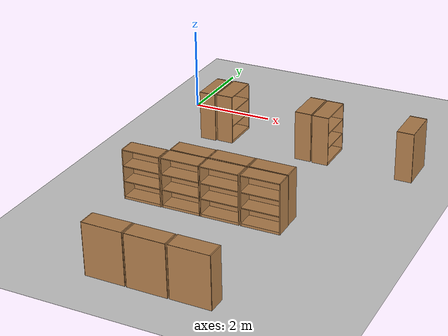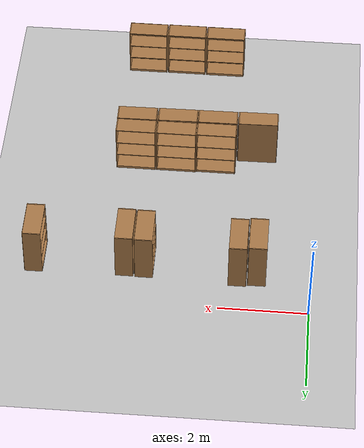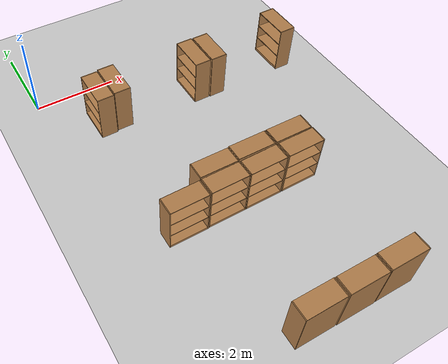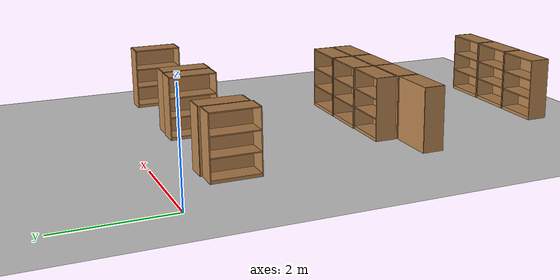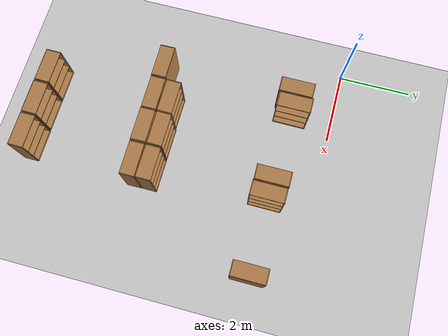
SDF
<sdf version="1.6">
 <world name="default">
  <model name="ground_plane">
   <static>1</static>
   <link name="link">
    <collision name="collision">
     <geometry><plane><normal>0 0 1</normal><size>100 100</size></plane></geometry>
     <surface>
      <contact><collide_bitmask>65535</collide_bitmask></contact>
      <friction><ode><mu>100</mu><mu2>50</mu2></ode></friction>
     </surface>
    </collision>
    <visual name="visual">
     <cast_shadows>0</cast_shadows>
     <geometry><plane><normal>0 0 1</normal><size>100 100</size></plane></geometry>
     <material>
      <script><uri>file://media/materials/scripts/gazebo.material</uri><name>Gazebo/Grey</name></script>
     </material>
    </visual>
   </link>
  </model>
  <model name="bookshelf_clone_38">
   <static>1</static>
   <link name="link">
    <inertial><mass>1</mass></inertial>
    <collision name="back">
     <pose>0 0.005 0.6 0 -0 0</pose>
     <geometry><box><size>0.9 0.01 1.2</size></box></geometry>
    </collision>
    <visual name="visual1">
     <pose>0 0.005 0.6 0 -0 0</pose>
     <geometry><box><size>0.9 0.01 1.2</size></box></geometry>
     <material>
      <script><uri>file://media/materials/scripts/gazebo.material</uri><name>Gazebo/Wood</name></script>
     </material>
    </visual>
    <collision name="left_side">
     <pose>0.45 -0.195 0.6 0 -0 0</pose>
     <geometry><box><size>0.02 0.4 1.2</size></box></geometry>
    </collision>
    <visual name="visual2">
     <pose>0.45 -0.195 0.6 0 -0 0</pose>
     <geometry><box><size>0.02 0.4 1.2</size></box></geometry>
     <material>
      <script><uri>file://media/materials/scripts/gazebo.material</uri><name>Gazebo/Wood</name></script>
     </material>
    </visual>
    <collision name="right_side">
     <pose>-0.45 -0.195 0.6 0 -0 0</pose>
     <geometry><box><size>0.02 0.4 1.2</size></box></geometry>
    </collision>
    <visual name="visual3">
     <pose>-0.45 -0.195 0.6 0 -0 0</pose>
     <geometry><box><size>0.02 0.4 1.2</size></box></geometry>
     <material>
      <script><uri>file://media/materials/scripts/gazebo.material</uri><name>Gazebo/Wood</name></script>
     </material>
    </visual>
    <collision name="bottom">
     <pose>0 -0.195 0.03 0 -0 0</pose>
     <geometry><box><size>0.88 0.4 0.06</size></box></geometry>
    </collision>
    <visual name="visual4">
     <pose>0 -0.195 0.03 0 -0 0</pose>
     <geometry><box><size>0.88 0.4 0.06</size></box></geometry>
     <material>
      <script><uri>file://media/materials/scripts/gazebo.material</uri><name>Gazebo/Wood</name></script>
     </material>
    </visual>
    <collision name="top">
     <pose>0 -0.195 1.19 0 -0 0</pose>
     <geometry><box><size>0.88 0.4 0.02</size></box></geometry>
    </collision>
    <visual name="visual5">
     <pose>0 -0.195 1.19 0 -0 0</pose>
     <geometry><box><size>0.88 0.4 0.02</size></box></geometry>
     <material>
      <script><uri>file://media/materials/scripts/gazebo.material</uri><name>Gazebo/Wood</name></script>
     </material>
    </visual>
    <collision name="low_shelf">
     <pose>0 -0.195 0.43 0 -0 0</pose>
     <geometry><box><size>0.88 0.4 0.02</size></box></geometry>
    </collision>
    <visual name="visual6">
     <pose>0 -0.195 0.43 0 -0 0</pose>
     <geometry><box><size>0.88 0.4 0.02</size></box></geometry>
     <material>
      <script><uri>file://media/materials/scripts/gazebo.material</uri><name>Gazebo/Wood</name></script>
     </material>
    </visual>
    <collision name="high_shelf">
     <pose>0 -0.195 0.8 0 -0 0</pose>
     <geometry><box><size>0.88 0.4 0.02</size></box></geometry>
    </collision>
    <visual name="visual7">
     <pose>0 -0.195 0.8 0 -0 0</pose>
     <geometry><box><size>0.88 0.4 0.02</size></box></geometry>
     <material>
      <script><uri>file://media/materials/scripts/gazebo.material</uri><name>Gazebo/Wood</name></script>
     </material>
    </visual>
   </link>
   <pose>4.17204 -4.61435 0 0 -0 0.005938</pose>
  </model>
  <model name="bookshelf_clone_39">
   <static>1</static>
   <link name="link">
    <inertial><mass>1</mass></inertial>
    <collision name="back">
     <pose>0 0.005 0.6 0 -0 0</pose>
     <geometry><box><size>0.9 0.01 1.2</size></box></geometry>
    </collision>
    <visual name="visual1">
     <pose>0 0.005 0.6 0 -0 0</pose>
     <geometry><box><size>0.9 0.01 1.2</size></box></geometry>
     <material>
      <script><uri>file://media/materials/scripts/gazebo.material</uri><name>Gazebo/Wood</name></script>
     </material>
    </visual>
    <collision name="left_side">
     <pose>0.45 -0.195 0.6 0 -0 0</pose>
     <geometry><box><size>0.02 0.4 1.2</size></box></geometry>
    </collision>
    <visual name="visual2">
     <pose>0.45 -0.195 0.6 0 -0 0</pose>
     <geometry><box><size>0.02 0.4 1.2</size></box></geometry>
     <material>
      <script><uri>file://media/materials/scripts/gazebo.material</uri><name>Gazebo/Wood</name></script>
     </material>
    </visual>
    <collision name="right_side">
     <pose>-0.45 -0.195 0.6 0 -0 0</pose>
     <geometry><box><size>0.02 0.4 1.2</size></box></geometry>
    </collision>
    <visual name="visual3">
     <pose>-0.45 -0.195 0.6 0 -0 0</pose>
     <geometry><box><size>0.02 0.4 1.2</size></box></geometry>
     <material>
      <script><uri>file://media/materials/scripts/gazebo.material</uri><name>Gazebo/Wood</name></script>
     </material>
    </visual>
    <collision name="bottom">
     <pose>0 -0.195 0.03 0 -0 0</pose>
     <geometry><box><size>0.88 0.4 0.06</size></box></geometry>
    </collision>
    <visual name="visual4">
     <pose>0 -0.195 0.03 0 -0 0</pose>
     <geometry><box><size>0.88 0.4 0.06</size></box></geometry>
     <material>
      <script><uri>file://media/materials/scripts/gazebo.material</uri><name>Gazebo/Wood</name></script>
     </material>
    </visual>
    <collision name="top">
     <pose>0 -0.195 1.19 0 -0 0</pose>
     <geometry><box><size>0.88 0.4 0.02</size></box></geometry>
    </collision>
    <visual name="visual5">
     <pose>0 -0.195 1.19 0 -0 0</pose>
     <geometry><box><size>0.88 0.4 0.02</size></box></geometry>
     <material>
      <script><uri>file://media/materials/scripts/gazebo.material</uri><name>Gazebo/Wood</name></script>
     </material>
    </visual>
    <collision name="low_shelf">
     <pose>0 -0.195 0.43 0 -0 0</pose>
     <geometry><box><size>0.88 0.4 0.02</size></box></geometry>
    </collision>
    <visual name="visual6">
     <pose>0 -0.195 0.43 0 -0 0</pose>
     <geometry><box><size>0.88 0.4 0.02</size></box></geometry>
     <material>
      <script><uri>file://media/materials/scripts/gazebo.material</uri><name>Gazebo/Wood</name></script>
     </material>
    </visual>
    <collision name="high_shelf">
     <pose>0 -0.195 0.8 0 -0 0</pose>
     <geometry><box><size>0.88 0.4 0.02</size></box></geometry>
    </collision>
    <visual name="visual7">
     <pose>0 -0.195 0.8 0 -0 0</pose>
     <geometry><box><size>0.88 0.4 0.02</size></box></geometry>
     <material>
      <script><uri>file://media/materials/scripts/gazebo.material</uri><name>Gazebo/Wood</name></script>
     </material>
    </visual>
   </link>
   <pose>3.22638 -4.62218 0 0 -0 0.005938</pose>
  </model>
  <model name="bookshelf_clone_40">
   <static>1</static>
   <link name="link">
    <inertial><mass>1</mass></inertial>
    <collision name="back">
     <pose>0 0.005 0.6 0 -0 0</pose>
     <geometry><box><size>0.9 0.01 1.2</size></box></geometry>
    </collision>
    <visual name="visual1">
     <pose>0 0.005 0.6 0 -0 0</pose>
     <geometry><box><size>0.9 0.01 1.2</size></box></geometry>
     <material>
      <script><uri>file://media/materials/scripts/gazebo.material</uri><name>Gazebo/Wood</name></script>
     </material>
    </visual>
    <collision name="left_side">
     <pose>0.45 -0.195 0.6 0 -0 0</pose>
     <geometry><box><size>0.02 0.4 1.2</size></box></geometry>
    </collision>
    <visual name="visual2">
     <pose>0.45 -0.195 0.6 0 -0 0</pose>
     <geometry><box><size>0.02 0.4 1.2</size></box></geometry>
     <material>
      <script><uri>file://media/materials/scripts/gazebo.material</uri><name>Gazebo/Wood</name></script>
     </material>
    </visual>
    <collision name="right_side">
     <pose>-0.45 -0.195 0.6 0 -0 0</pose>
     <geometry><box><size>0.02 0.4 1.2</size></box></geometry>
    </collision>
    <visual name="visual3">
     <pose>-0.45 -0.195 0.6 0 -0 0</pose>
     <geometry><box><size>0.02 0.4 1.2</size></box></geometry>
     <material>
      <script><uri>file://media/materials/scripts/gazebo.material</uri><name>Gazebo/Wood</name></script>
     </material>
    </visual>
    <collision name="bottom">
     <pose>0 -0.195 0.03 0 -0 0</pose>
     <geometry><box><size>0.88 0.4 0.06</size></box></geometry>
    </collision>
    <visual name="visual4">
     <pose>0 -0.195 0.03 0 -0 0</pose>
     <geometry><box><size>0.88 0.4 0.06</size></box></geometry>
     <material>
      <script><uri>file://media/materials/scripts/gazebo.material</uri><name>Gazebo/Wood</name></script>
     </material>
    </visual>
    <collision name="top">
     <pose>0 -0.195 1.19 0 -0 0</pose>
     <geometry><box><size>0.88 0.4 0.02</size></box></geometry>
    </collision>
    <visual name="visual5">
     <pose>0 -0.195 1.19 0 -0 0</pose>
     <geometry><box><size>0.88 0.4 0.02</size></box></geometry>
     <material>
      <script><uri>file://media/materials/scripts/gazebo.material</uri><name>Gazebo/Wood</name></script>
     </material>
    </visual>
    <collision name="low_shelf">
     <pose>0 -0.195 0.43 0 -0 0</pose>
     <geometry><box><size>0.88 0.4 0.02</size></box></geometry>
    </collision>
    <visual name="visual6">
     <pose>0 -0.195 0.43 0 -0 0</pose>
     <geometry><box><size>0.88 0.4 0.02</size></box></geometry>
     <material>
      <script><uri>file://media/materials/scripts/gazebo.material</uri><name>Gazebo/Wood</name></script>
     </material>
    </visual>
    <collision name="high_shelf">
     <pose>0 -0.195 0.8 0 -0 0</pose>
     <geometry><box><size>0.88 0.4 0.02</size></box></geometry>
    </collision>
    <visual name="visual7">
     <pose>0 -0.195 0.8 0 -0 0</pose>
     <geometry><box><size>0.88 0.4 0.02</size></box></geometry>
     <material>
      <script><uri>file://media/materials/scripts/gazebo.material</uri><name>Gazebo/Wood</name></script>
     </material>
    </visual>
   </link>
   <pose>2.29794 -4.62569 0 0 -0 0.005938</pose>
  </model>
  <model name="bookshelf_clone_41">
   <static>1</static>
   <link name="link">
    <inertial><mass>1</mass></inertial>
    <collision name="back">
     <pose>0 0.005 0.6 0 -0 0</pose>
     <geometry><box><size>0.9 0.01 1.2</size></box></geometry>
    </collision>
    <visual name="visual1">
     <pose>0 0.005 0.6 0 -0 0</pose>
     <geometry><box><size>0.9 0.01 1.2</size></box></geometry>
     <material>
      <script><uri>file://media/materials/scripts/gazebo.material</uri><name>Gazebo/Wood</name></script>
     </material>
    </visual>
    <collision name="left_side">
     <pose>0.45 -0.195 0.6 0 -0 0</pose>
     <geometry><box><size>0.02 0.4 1.2</size></box></geometry>
    </collision>
    <visual name="visual2">
     <pose>0.45 -0.195 0.6 0 -0 0</pose>
     <geometry><box><size>0.02 0.4 1.2</size></box></geometry>
     <material>
      <script><uri>file://media/materials/scripts/gazebo.material</uri><name>Gazebo/Wood</name></script>
     </material>
    </visual>
    <collision name="right_side">
     <pose>-0.45 -0.195 0.6 0 -0 0</pose>
     <geometry><box><size>0.02 0.4 1.2</size></box></geometry>
    </collision>
    <visual name="visual3">
     <pose>-0.45 -0.195 0.6 0 -0 0</pose>
     <geometry><box><size>0.02 0.4 1.2</size></box></geometry>
     <material>
      <script><uri>file://media/materials/scripts/gazebo.material</uri><name>Gazebo/Wood</name></script>
     </material>
    </visual>
    <collision name="bottom">
     <pose>0 -0.195 0.03 0 -0 0</pose>
     <geometry><box><size>0.88 0.4 0.06</size></box></geometry>
    </collision>
    <visual name="visual4">
     <pose>0 -0.195 0.03 0 -0 0</pose>
     <geometry><box><size>0.88 0.4 0.06</size></box></geometry>
     <material>
      <script><uri>file://media/materials/scripts/gazebo.material</uri><name>Gazebo/Wood</name></script>
     </material>
    </visual>
    <collision name="top">
     <pose>0 -0.195 1.19 0 -0 0</pose>
     <geometry><box><size>0.88 0.4 0.02</size></box></geometry>
    </collision>
    <visual name="visual5">
     <pose>0 -0.195 1.19 0 -0 0</pose>
     <geometry><box><size>0.88 0.4 0.02</size></box></geometry>
     <material>
      <script><uri>file://media/materials/scripts/gazebo.material</uri><name>Gazebo/Wood</name></script>
     </material>
    </visual>
    <collision name="low_shelf">
     <pose>0 -0.195 0.43 0 -0 0</pose>
     <geometry><box><size>0.88 0.4 0.02</size></box></geometry>
    </collision>
    <visual name="visual6">
     <pose>0 -0.195 0.43 0 -0 0</pose>
     <geometry><box><size>0.88 0.4 0.02</size></box></geometry>
     <material>
      <script><uri>file://media/materials/scripts/gazebo.material</uri><name>Gazebo/Wood</name></script>
     </material>
    </visual>
    <collision name="high_shelf">
     <pose>0 -0.195 0.8 0 -0 0</pose>
     <geometry><box><size>0.88 0.4 0.02</size></box></geometry>
    </collision>
    <visual name="visual7">
     <pose>0 -0.195 0.8 0 -0 0</pose>
     <geometry><box><size>0.88 0.4 0.02</size></box></geometry>
     <material>
      <script><uri>file://media/materials/scripts/gazebo.material</uri><name>Gazebo/Wood</name></script>
     </material>
    </visual>
   </link>
   <pose>1.35736 -4.64041 0 0 -0 0.005938</pose>
  </model>
  <model name="bookshelf_clone_44">
   <static>1</static>
   <link name="link">
    <inertial><mass>1</mass></inertial>
    <collision name="back">
     <pose>0 0.005 0.6 0 -0 0</pose>
     <geometry><box><size>0.9 0.01 1.2</size></box></geometry>
    </collision>
    <visual name="visual1">
     <pose>0 0.005 0.6 0 -0 0</pose>
     <geometry><box><size>0.9 0.01 1.2</size></box></geometry>
     <material>
      <script><uri>file://media/materials/scripts/gazebo.material</uri><name>Gazebo/Wood</name></script>
     </material>
    </visual>
    <collision name="left_side">
     <pose>0.45 -0.195 0.6 0 -0 0</pose>
     <geometry><box><size>0.02 0.4 1.2</size></box></geometry>
    </collision>
    <visual name="visual2">
     <pose>0.45 -0.195 0.6 0 -0 0</pose>
     <geometry><box><size>0.02 0.4 1.2</size></box></geometry>
     <material>
      <script><uri>file://media/materials/scripts/gazebo.material</uri><name>Gazebo/Wood</name></script>
     </material>
    </visual>
    <collision name="right_side">
     <pose>-0.45 -0.195 0.6 0 -0 0</pose>
     <geometry><box><size>0.02 0.4 1.2</size></box></geometry>
    </collision>
    <visual name="visual3">
     <pose>-0.45 -0.195 0.6 0 -0 0</pose>
     <geometry><box><size>0.02 0.4 1.2</size></box></geometry>
     <material>
      <script><uri>file://media/materials/scripts/gazebo.material</uri><name>Gazebo/Wood</name></script>
     </material>
    </visual>
    <collision name="bottom">
     <pose>0 -0.195 0.03 0 -0 0</pose>
     <geometry><box><size>0.88 0.4 0.06</size></box></geometry>
    </collision>
    <visual name="visual4">
     <pose>0 -0.195 0.03 0 -0 0</pose>
     <geometry><box><size>0.88 0.4 0.06</size></box></geometry>
     <material>
      <script><uri>file://media/materials/scripts/gazebo.material</uri><name>Gazebo/Wood</name></script>
     </material>
    </visual>
    <collision name="top">
     <pose>0 -0.195 1.19 0 -0 0</pose>
     <geometry><box><size>0.88 0.4 0.02</size></box></geometry>
    </collision>
    <visual name="visual5">
     <pose>0 -0.195 1.19 0 -0 0</pose>
     <geometry><box><size>0.88 0.4 0.02</size></box></geometry>
     <material>
      <script><uri>file://media/materials/scripts/gazebo.material</uri><name>Gazebo/Wood</name></script>
     </material>
    </visual>
    <collision name="low_shelf">
     <pose>0 -0.195 0.43 0 -0 0</pose>
     <geometry><box><size>0.88 0.4 0.02</size></box></geometry>
    </collision>
    <visual name="visual6">
     <pose>0 -0.195 0.43 0 -0 0</pose>
     <geometry><box><size>0.88 0.4 0.02</size></box></geometry>
     <material>
      <script><uri>file://media/materials/scripts/gazebo.material</uri><name>Gazebo/Wood</name></script>
     </material>
    </visual>
    <collision name="high_shelf">
     <pose>0 -0.195 0.8 0 -0 0</pose>
     <geometry><box><size>0.88 0.4 0.02</size></box></geometry>
    </collision>
    <visual name="visual7">
     <pose>0 -0.195 0.8 0 -0 0</pose>
     <geometry><box><size>0.88 0.4 0.02</size></box></geometry>
     <material>
      <script><uri>file://media/materials/scripts/gazebo.material</uri><name>Gazebo/Wood</name></script>
     </material>
    </visual>
   </link>
   <pose>4.16633 -4.5747 0 0 -0 3.13561</pose>
  </model>
  <model name="bookshelf_clone_45">
   <static>1</static>
   <link name="link">
    <inertial><mass>1</mass></inertial>
    <collision name="back">
     <pose>0 0.005 0.6 0 -0 0</pose>
     <geometry><box><size>0.9 0.01 1.2</size></box></geometry>
    </collision>
    <visual name="visual1">
     <pose>0 0.005 0.6 0 -0 0</pose>
     <geometry><box><size>0.9 0.01 1.2</size></box></geometry>
     <material>
      <script><uri>file://media/materials/scripts/gazebo.material</uri><name>Gazebo/Wood</name></script>
     </material>
    </visual>
    <collision name="left_side">
     <pose>0.45 -0.195 0.6 0 -0 0</pose>
     <geometry><box><size>0.02 0.4 1.2</size></box></geometry>
    </collision>
    <visual name="visual2">
     <pose>0.45 -0.195 0.6 0 -0 0</pose>
     <geometry><box><size>0.02 0.4 1.2</size></box></geometry>
     <material>
      <script><uri>file://media/materials/scripts/gazebo.material</uri><name>Gazebo/Wood</name></script>
     </material>
    </visual>
    <collision name="right_side">
     <pose>-0.45 -0.195 0.6 0 -0 0</pose>
     <geometry><box><size>0.02 0.4 1.2</size></box></geometry>
    </collision>
    <visual name="visual3">
     <pose>-0.45 -0.195 0.6 0 -0 0</pose>
     <geometry><box><size>0.02 0.4 1.2</size></box></geometry>
     <material>
      <script><uri>file://media/materials/scripts/gazebo.material</uri><name>Gazebo/Wood</name></script>
     </material>
    </visual>
    <collision name="bottom">
     <pose>0 -0.195 0.03 0 -0 0</pose>
     <geometry><box><size>0.88 0.4 0.06</size></box></geometry>
    </collision>
    <visual name="visual4">
     <pose>0 -0.195 0.03 0 -0 0</pose>
     <geometry><box><size>0.88 0.4 0.06</size></box></geometry>
     <material>
      <script><uri>file://media/materials/scripts/gazebo.material</uri><name>Gazebo/Wood</name></script>
     </material>
    </visual>
    <collision name="top">
     <pose>0 -0.195 1.19 0 -0 0</pose>
     <geometry><box><size>0.88 0.4 0.02</size></box></geometry>
    </collision>
    <visual name="visual5">
     <pose>0 -0.195 1.19 0 -0 0</pose>
     <geometry><box><size>0.88 0.4 0.02</size></box></geometry>
     <material>
      <script><uri>file://media/materials/scripts/gazebo.material</uri><name>Gazebo/Wood</name></script>
     </material>
    </visual>
    <collision name="low_shelf">
     <pose>0 -0.195 0.43 0 -0 0</pose>
     <geometry><box><size>0.88 0.4 0.02</size></box></geometry>
    </collision>
    <visual name="visual6">
     <pose>0 -0.195 0.43 0 -0 0</pose>
     <geometry><box><size>0.88 0.4 0.02</size></box></geometry>
     <material>
      <script><uri>file://media/materials/scripts/gazebo.material</uri><name>Gazebo/Wood</name></script>
     </material>
    </visual>
    <collision name="high_shelf">
     <pose>0 -0.195 0.8 0 -0 0</pose>
     <geometry><box><size>0.88 0.4 0.02</size></box></geometry>
    </collision>
    <visual name="visual7">
     <pose>0 -0.195 0.8 0 -0 0</pose>
     <geometry><box><size>0.88 0.4 0.02</size></box></geometry>
     <material>
      <script><uri>file://media/materials/scripts/gazebo.material</uri><name>Gazebo/Wood</name></script>
     </material>
    </visual>
   </link>
   <pose>3.22636 -4.57112 0 0 -0 3.13561</pose>
  </model>
  <model name="bookshelf_clone_46">
   <static>1</static>
   <link name="link">
    <inertial><mass>1</mass></inertial>
    <collision name="back">
     <pose>0 0.005 0.6 0 -0 0</pose>
     <geometry><box><size>0.9 0.01 1.2</size></box></geometry>
    </collision>
    <visual name="visual1">
     <pose>0 0.005 0.6 0 -0 0</pose>
     <geometry><box><size>0.9 0.01 1.2</size></box></geometry>
     <material>
      <script><uri>file://media/materials/scripts/gazebo.material</uri><name>Gazebo/Wood</name></script>
     </material>
    </visual>
    <collision name="left_side">
     <pose>0.45 -0.195 0.6 0 -0 0</pose>
     <geometry><box><size>0.02 0.4 1.2</size></box></geometry>
    </collision>
    <visual name="visual2">
     <pose>0.45 -0.195 0.6 0 -0 0</pose>
     <geometry><box><size>0.02 0.4 1.2</size></box></geometry>
     <material>
      <script><uri>file://media/materials/scripts/gazebo.material</uri><name>Gazebo/Wood</name></script>
     </material>
    </visual>
    <collision name="right_side">
     <pose>-0.45 -0.195 0.6 0 -0 0</pose>
     <geometry><box><size>0.02 0.4 1.2</size></box></geometry>
    </collision>
    <visual name="visual3">
     <pose>-0.45 -0.195 0.6 0 -0 0</pose>
     <geometry><box><size>0.02 0.4 1.2</size></box></geometry>
     <material>
      <script><uri>file://media/materials/scripts/gazebo.material</uri><name>Gazebo/Wood</name></script>
     </material>
    </visual>
    <collision name="bottom">
     <pose>0 -0.195 0.03 0 -0 0</pose>
     <geometry><box><size>0.88 0.4 0.06</size></box></geometry>
    </collision>
    <visual name="visual4">
     <pose>0 -0.195 0.03 0 -0 0</pose>
     <geometry><box><size>0.88 0.4 0.06</size></box></geometry>
     <material>
      <script><uri>file://media/materials/scripts/gazebo.material</uri><name>Gazebo/Wood</name></script>
     </material>
    </visual>
    <collision name="top">
     <pose>0 -0.195 1.19 0 -0 0</pose>
     <geometry><box><size>0.88 0.4 0.02</size></box></geometry>
    </collision>
    <visual name="visual5">
     <pose>0 -0.195 1.19 0 -0 0</pose>
     <geometry><box><size>0.88 0.4 0.02</size></box></geometry>
     <material>
      <script><uri>file://media/materials/scripts/gazebo.material</uri><name>Gazebo/Wood</name></script>
     </material>
    </visual>
    <collision name="low_shelf">
     <pose>0 -0.195 0.43 0 -0 0</pose>
     <geometry><box><size>0.88 0.4 0.02</size></box></geometry>
    </collision>
    <visual name="visual6">
     <pose>0 -0.195 0.43 0 -0 0</pose>
     <geometry><box><size>0.88 0.4 0.02</size></box></geometry>
     <material>
      <script><uri>file://media/materials/scripts/gazebo.material</uri><name>Gazebo/Wood</name></script>
     </material>
    </visual>
    <collision name="high_shelf">
     <pose>0 -0.195 0.8 0 -0 0</pose>
     <geometry><box><size>0.88 0.4 0.02</size></box></geometry>
    </collision>
    <visual name="visual7">
     <pose>0 -0.195 0.8 0 -0 0</pose>
     <geometry><box><size>0.88 0.4 0.02</size></box></geometry>
     <material>
      <script><uri>file://media/materials/scripts/gazebo.material</uri><name>Gazebo/Wood</name></script>
     </material>
    </visual>
   </link>
   <pose>2.30219 -4.58339 0 0 -0 3.13561</pose>
  </model>
  <model name="bookshelf_clone_53">
   <static>1</static>
   <link name="link">
    <inertial><mass>1</mass></inertial>
    <collision name="back">
     <pose>0 0.005 0.6 0 -0 0</pose>
     <geometry><box><size>0.9 0.01 1.2</size></box></geometry>
    </collision>
    <visual name="visual1">
     <pose>0 0.005 0.6 0 -0 0</pose>
     <geometry><box><size>0.9 0.01 1.2</size></box></geometry>
     <material>
      <script><uri>file://media/materials/scripts/gazebo.material</uri><name>Gazebo/Wood</name></script>
     </material>
    </visual>
    <collision name="left_side">
     <pose>0.45 -0.195 0.6 0 -0 0</pose>
     <geometry><box><size>0.02 0.4 1.2</size></box></geometry>
    </collision>
    <visual name="visual2">
     <pose>0.45 -0.195 0.6 0 -0 0</pose>
     <geometry><box><size>0.02 0.4 1.2</size></box></geometry>
     <material>
      <script><uri>file://media/materials/scripts/gazebo.material</uri><name>Gazebo/Wood</name></script>
     </material>
    </visual>
    <collision name="right_side">
     <pose>-0.45 -0.195 0.6 0 -0 0</pose>
     <geometry><box><size>0.02 0.4 1.2</size></box></geometry>
    </collision>
    <visual name="visual3">
     <pose>-0.45 -0.195 0.6 0 -0 0</pose>
     <geometry><box><size>0.02 0.4 1.2</size></box></geometry>
     <material>
      <script><uri>file://media/materials/scripts/gazebo.material</uri><name>Gazebo/Wood</name></script>
     </material>
    </visual>
    <collision name="bottom">
     <pose>0 -0.195 0.03 0 -0 0</pose>
     <geometry><box><size>0.88 0.4 0.06</size></box></geometry>
    </collision>
    <visual name="visual4">
     <pose>0 -0.195 0.03 0 -0 0</pose>
     <geometry><box><size>0.88 0.4 0.06</size></box></geometry>
     <material>
      <script><uri>file://media/materials/scripts/gazebo.material</uri><name>Gazebo/Wood</name></script>
     </material>
    </visual>
    <collision name="top">
     <pose>0 -0.195 1.19 0 -0 0</pose>
     <geometry><box><size>0.88 0.4 0.02</size></box></geometry>
    </collision>
    <visual name="visual5">
     <pose>0 -0.195 1.19 0 -0 0</pose>
     <geometry><box><size>0.88 0.4 0.02</size></box></geometry>
     <material>
      <script><uri>file://media/materials/scripts/gazebo.material</uri><name>Gazebo/Wood</name></script>
     </material>
    </visual>
    <collision name="low_shelf">
     <pose>0 -0.195 0.43 0 -0 0</pose>
     <geometry><box><size>0.88 0.4 0.02</size></box></geometry>
    </collision>
    <visual name="visual6">
     <pose>0 -0.195 0.43 0 -0 0</pose>
     <geometry><box><size>0.88 0.4 0.02</size></box></geometry>
     <material>
      <script><uri>file://media/materials/scripts/gazebo.material</uri><name>Gazebo/Wood</name></script>
     </material>
    </visual>
    <collision name="high_shelf">
     <pose>0 -0.195 0.8 0 -0 0</pose>
     <geometry><box><size>0.88 0.4 0.02</size></box></geometry>
    </collision>
    <visual name="visual7">
     <pose>0 -0.195 0.8 0 -0 0</pose>
     <geometry><box><size>0.88 0.4 0.02</size></box></geometry>
     <material>
      <script><uri>file://media/materials/scripts/gazebo.material</uri><name>Gazebo/Wood</name></script>
     </material>
    </visual>
   </link>
   <pose>2.28143 -7.98029 0 0 -0 3.13561</pose>
  </model>
  <model name="bookshelf_clone_54">
   <static>1</static>
   <link name="link">
    <inertial><mass>1</mass></inertial>
    <collision name="back">
     <pose>0 0.005 0.6 0 -0 0</pose>
     <geometry><box><size>0.9 0.01 1.2</size></box></geometry>
    </collision>
    <visual name="visual1">
     <pose>0 0.005 0.6 0 -0 0</pose>
     <geometry><box><size>0.9 0.01 1.2</size></box></geometry>
     <material>
      <script><uri>file://media/materials/scripts/gazebo.material</uri><name>Gazebo/Wood</name></script>
     </material>
    </visual>
    <collision name="left_side">
     <pose>0.45 -0.195 0.6 0 -0 0</pose>
     <geometry><box><size>0.02 0.4 1.2</size></box></geometry>
    </collision>
    <visual name="visual2">
     <pose>0.45 -0.195 0.6 0 -0 0</pose>
     <geometry><box><size>0.02 0.4 1.2</size></box></geometry>
     <material>
      <script><uri>file://media/materials/scripts/gazebo.material</uri><name>Gazebo/Wood</name></script>
     </material>
    </visual>
    <collision name="right_side">
     <pose>-0.45 -0.195 0.6 0 -0 0</pose>
     <geometry><box><size>0.02 0.4 1.2</size></box></geometry>
    </collision>
    <visual name="visual3">
     <pose>-0.45 -0.195 0.6 0 -0 0</pose>
     <geometry><box><size>0.02 0.4 1.2</size></box></geometry>
     <material>
      <script><uri>file://media/materials/scripts/gazebo.material</uri><name>Gazebo/Wood</name></script>
     </material>
    </visual>
    <collision name="bottom">
     <pose>0 -0.195 0.03 0 -0 0</pose>
     <geometry><box><size>0.88 0.4 0.06</size></box></geometry>
    </collision>
    <visual name="visual4">
     <pose>0 -0.195 0.03 0 -0 0</pose>
     <geometry><box><size>0.88 0.4 0.06</size></box></geometry>
     <material>
      <script><uri>file://media/materials/scripts/gazebo.material</uri><name>Gazebo/Wood</name></script>
     </material>
    </visual>
    <collision name="top">
     <pose>0 -0.195 1.19 0 -0 0</pose>
     <geometry><box><size>0.88 0.4 0.02</size></box></geometry>
    </collision>
    <visual name="visual5">
     <pose>0 -0.195 1.19 0 -0 0</pose>
     <geometry><box><size>0.88 0.4 0.02</size></box></geometry>
     <material>
      <script><uri>file://media/materials/scripts/gazebo.material</uri><name>Gazebo/Wood</name></script>
     </material>
    </visual>
    <collision name="low_shelf">
     <pose>0 -0.195 0.43 0 -0 0</pose>
     <geometry><box><size>0.88 0.4 0.02</size></box></geometry>
    </collision>
    <visual name="visual6">
     <pose>0 -0.195 0.43 0 -0 0</pose>
     <geometry><box><size>0.88 0.4 0.02</size></box></geometry>
     <material>
      <script><uri>file://media/materials/scripts/gazebo.material</uri><name>Gazebo/Wood</name></script>
     </material>
    </visual>
    <collision name="high_shelf">
     <pose>0 -0.195 0.8 0 -0 0</pose>
     <geometry><box><size>0.88 0.4 0.02</size></box></geometry>
    </collision>
    <visual name="visual7">
     <pose>0 -0.195 0.8 0 -0 0</pose>
     <geometry><box><size>0.88 0.4 0.02</size></box></geometry>
     <material>
      <script><uri>file://media/materials/scripts/gazebo.material</uri><name>Gazebo/Wood</name></script>
     </material>
    </visual>
   </link>
   <pose>3.22461 -7.98992 0 0 -0 3.13561</pose>
  </model>
  <model name="bookshelf_clone_55">
   <static>1</static>
   <link name="link">
    <inertial><mass>1</mass></inertial>
    <collision name="back">
     <pose>0 0.005 0.6 0 -0 0</pose>
     <geometry><box><size>0.9 0.01 1.2</size></box></geometry>
    </collision>
    <visual name="visual1">
     <pose>0 0.005 0.6 0 -0 0</pose>
     <geometry><box><size>0.9 0.01 1.2</size></box></geometry>
     <material>
      <script><uri>file://media/materials/scripts/gazebo.material</uri><name>Gazebo/Wood</name></script>
     </material>
    </visual>
    <collision name="left_side">
     <pose>0.45 -0.195 0.6 0 -0 0</pose>
     <geometry><box><size>0.02 0.4 1.2</size></box></geometry>
    </collision>
    <visual name="visual2">
     <pose>0.45 -0.195 0.6 0 -0 0</pose>
     <geometry><box><size>0.02 0.4 1.2</size></box></geometry>
     <material>
      <script><uri>file://media/materials/scripts/gazebo.material</uri><name>Gazebo/Wood</name></script>
     </material>
    </visual>
    <collision name="right_side">
     <pose>-0.45 -0.195 0.6 0 -0 0</pose>
     <geometry><box><size>0.02 0.4 1.2</size></box></geometry>
    </collision>
    <visual name="visual3">
     <pose>-0.45 -0.195 0.6 0 -0 0</pose>
     <geometry><box><size>0.02 0.4 1.2</size></box></geometry>
     <material>
      <script><uri>file://media/materials/scripts/gazebo.material</uri><name>Gazebo/Wood</name></script>
     </material>
    </visual>
    <collision name="bottom">
     <pose>0 -0.195 0.03 0 -0 0</pose>
     <geometry><box><size>0.88 0.4 0.06</size></box></geometry>
    </collision>
    <visual name="visual4">
     <pose>0 -0.195 0.03 0 -0 0</pose>
     <geometry><box><size>0.88 0.4 0.06</size></box></geometry>
     <material>
      <script><uri>file://media/materials/scripts/gazebo.material</uri><name>Gazebo/Wood</name></script>
     </material>
    </visual>
    <collision name="top">
     <pose>0 -0.195 1.19 0 -0 0</pose>
     <geometry><box><size>0.88 0.4 0.02</size></box></geometry>
    </collision>
    <visual name="visual5">
     <pose>0 -0.195 1.19 0 -0 0</pose>
     <geometry><box><size>0.88 0.4 0.02</size></box></geometry>
     <material>
      <script><uri>file://media/materials/scripts/gazebo.material</uri><name>Gazebo/Wood</name></script>
     </material>
    </visual>
    <collision name="low_shelf">
     <pose>0 -0.195 0.43 0 -0 0</pose>
     <geometry><box><size>0.88 0.4 0.02</size></box></geometry>
    </collision>
    <visual name="visual6">
     <pose>0 -0.195 0.43 0 -0 0</pose>
     <geometry><box><size>0.88 0.4 0.02</size></box></geometry>
     <material>
      <script><uri>file://media/materials/scripts/gazebo.material</uri><name>Gazebo/Wood</name></script>
     </material>
    </visual>
    <collision name="high_shelf">
     <pose>0 -0.195 0.8 0 -0 0</pose>
     <geometry><box><size>0.88 0.4 0.02</size></box></geometry>
    </collision>
    <visual name="visual7">
     <pose>0 -0.195 0.8 0 -0 0</pose>
     <geometry><box><size>0.88 0.4 0.02</size></box></geometry>
     <material>
      <script><uri>file://media/materials/scripts/gazebo.material</uri><name>Gazebo/Wood</name></script>
     </material>
    </visual>
   </link>
   <pose>4.1665 -7.98999 0 0 -0 3.13561</pose>
  </model>
  <model name="bookshelf_clone_107">
   <static>1</static>
   <link name="link">
    <inertial><mass>1</mass></inertial>
    <collision name="back">
     <pose>0 0.005 0.6 0 -0 0</pose>
     <geometry><box><size>0.9 0.01 1.2</size></box></geometry>
    </collision>
    <visual name="visual1">
     <pose>0 0.005 0.6 0 -0 0</pose>
     <geometry><box><size>0.9 0.01 1.2</size></box></geometry>
     <material>
      <script><uri>file://media/materials/scripts/gazebo.material</uri><name>Gazebo/Wood</name></script>
     </material>
    </visual>
    <collision name="left_side">
     <pose>0.45 -0.195 0.6 0 -0 0</pose>
     <geometry><box><size>0.02 0.4 1.2</size></box></geometry>
    </collision>
    <visual name="visual2">
     <pose>0.45 -0.195 0.6 0 -0 0</pose>
     <geometry><box><size>0.02 0.4 1.2</size></box></geometry>
     <material>
      <script><uri>file://media/materials/scripts/gazebo.material</uri><name>Gazebo/Wood</name></script>
     </material>
    </visual>
    <collision name="right_side">
     <pose>-0.45 -0.195 0.6 0 -0 0</pose>
     <geometry><box><size>0.02 0.4 1.2</size></box></geometry>
    </collision>
    <visual name="visual3">
     <pose>-0.45 -0.195 0.6 0 -0 0</pose>
     <geometry><box><size>0.02 0.4 1.2</size></box></geometry>
     <material>
      <script><uri>file://media/materials/scripts/gazebo.material</uri><name>Gazebo/Wood</name></script>
     </material>
    </visual>
    <collision name="bottom">
     <pose>0 -0.195 0.03 0 -0 0</pose>
     <geometry><box><size>0.88 0.4 0.06</size></box></geometry>
    </collision>
    <visual name="visual4">
     <pose>0 -0.195 0.03 0 -0 0</pose>
     <geometry><box><size>0.88 0.4 0.06</size></box></geometry>
     <material>
      <script><uri>file://media/materials/scripts/gazebo.material</uri><name>Gazebo/Wood</name></script>
     </material>
    </visual>
    <collision name="top">
     <pose>0 -0.195 1.19 0 -0 0</pose>
     <geometry><box><size>0.88 0.4 0.02</size></box></geometry>
    </collision>
    <visual name="visual5">
     <pose>0 -0.195 1.19 0 -0 0</pose>
     <geometry><box><size>0.88 0.4 0.02</size></box></geometry>
     <material>
      <script><uri>file://media/materials/scripts/gazebo.material</uri><name>Gazebo/Wood</name></script>
     </material>
    </visual>
    <collision name="low_shelf">
     <pose>0 -0.195 0.43 0 -0 0</pose>
     <geometry><box><size>0.88 0.4 0.02</size></box></geometry>
    </collision>
    <visual name="visual6">
     <pose>0 -0.195 0.43 0 -0 0</pose>
     <geometry><box><size>0.88 0.4 0.02</size></box></geometry>
     <material>
      <script><uri>file://media/materials/scripts/gazebo.material</uri><name>Gazebo/Wood</name></script>
     </material>
    </visual>
    <collision name="high_shelf">
     <pose>0 -0.195 0.8 0 -0 0</pose>
     <geometry><box><size>0.88 0.4 0.02</size></box></geometry>
    </collision>
    <visual name="visual7">
     <pose>0 -0.195 0.8 0 -0 0</pose>
     <geometry><box><size>0.88 0.4 0.02</size></box></geometry>
     <material>
      <script><uri>file://media/materials/scripts/gazebo.material</uri><name>Gazebo/Wood</name></script>
     </material>
    </visual>
   </link>
   <pose>1.37176 -1.18796 0 0 0 -1.57004</pose>
  </model>
  <model name="bookshelf_clone_114">
   <static>1</static>
   <link name="link">
    <inertial><mass>1</mass></inertial>
    <collision name="back">
     <pose>0 0.005 0.6 0 -0 0</pose>
     <geometry><box><size>0.9 0.01 1.2</size></box></geometry>
    </collision>
    <visual name="visual1">
     <pose>0 0.005 0.6 0 -0 0</pose>
     <geometry><box><size>0.9 0.01 1.2</size></box></geometry>
     <material>
      <script><uri>file://media/materials/scripts/gazebo.material</uri><name>Gazebo/Wood</name></script>
     </material>
    </visual>
    <collision name="left_side">
     <pose>0.45 -0.195 0.6 0 -0 0</pose>
     <geometry><box><size>0.02 0.4 1.2</size></box></geometry>
    </collision>
    <visual name="visual2">
     <pose>0.45 -0.195 0.6 0 -0 0</pose>
     <geometry><box><size>0.02 0.4 1.2</size></box></geometry>
     <material>
      <script><uri>file://media/materials/scripts/gazebo.material</uri><name>Gazebo/Wood</name></script>
     </material>
    </visual>
    <collision name="right_side">
     <pose>-0.45 -0.195 0.6 0 -0 0</pose>
     <geometry><box><size>0.02 0.4 1.2</size></box></geometry>
    </collision>
    <visual name="visual3">
     <pose>-0.45 -0.195 0.6 0 -0 0</pose>
     <geometry><box><size>0.02 0.4 1.2</size></box></geometry>
     <material>
      <script><uri>file://media/materials/scripts/gazebo.material</uri><name>Gazebo/Wood</name></script>
     </material>
    </visual>
    <collision name="bottom">
     <pose>0 -0.195 0.03 0 -0 0</pose>
     <geometry><box><size>0.88 0.4 0.06</size></box></geometry>
    </collision>
    <visual name="visual4">
     <pose>0 -0.195 0.03 0 -0 0</pose>
     <geometry><box><size>0.88 0.4 0.06</size></box></geometry>
     <material>
      <script><uri>file://media/materials/scripts/gazebo.material</uri><name>Gazebo/Wood</name></script>
     </material>
    </visual>
    <collision name="top">
     <pose>0 -0.195 1.19 0 -0 0</pose>
     <geometry><box><size>0.88 0.4 0.02</size></box></geometry>
    </collision>
    <visual name="visual5">
     <pose>0 -0.195 1.19 0 -0 0</pose>
     <geometry><box><size>0.88 0.4 0.02</size></box></geometry>
     <material>
      <script><uri>file://media/materials/scripts/gazebo.material</uri><name>Gazebo/Wood</name></script>
     </material>
    </visual>
    <collision name="low_shelf">
     <pose>0 -0.195 0.43 0 -0 0</pose>
     <geometry><box><size>0.88 0.4 0.02</size></box></geometry>
    </collision>
    <visual name="visual6">
     <pose>0 -0.195 0.43 0 -0 0</pose>
     <geometry><box><size>0.88 0.4 0.02</size></box></geometry>
     <material>
      <script><uri>file://media/materials/scripts/gazebo.material</uri><name>Gazebo/Wood</name></script>
     </material>
    </visual>
    <collision name="high_shelf">
     <pose>0 -0.195 0.8 0 -0 0</pose>
     <geometry><box><size>0.88 0.4 0.02</size></box></geometry>
    </collision>
    <visual name="visual7">
     <pose>0 -0.195 0.8 0 -0 0</pose>
     <geometry><box><size>0.88 0.4 0.02</size></box></geometry>
     <material>
      <script><uri>file://media/materials/scripts/gazebo.material</uri><name>Gazebo/Wood</name></script>
     </material>
    </visual>
   </link>
   <pose>3.88226 -1.24323 0 0 0 -1.57004</pose>
  </model>
  <model name="bookshelf_clone_121">
   <static>1</static>
   <link name="link">
    <inertial><mass>1</mass></inertial>
    <collision name="back">
     <pose>0 0.005 0.6 0 -0 0</pose>
     <geometry><box><size>0.9 0.01 1.2</size></box></geometry>
    </collision>
    <visual name="visual1">
     <pose>0 0.005 0.6 0 -0 0</pose>
     <geometry><box><size>0.9 0.01 1.2</size></box></geometry>
     <material>
      <script><uri>file://media/materials/scripts/gazebo.material</uri><name>Gazebo/Wood</name></script>
     </material>
    </visual>
    <collision name="left_side">
     <pose>0.45 -0.195 0.6 0 -0 0</pose>
     <geometry><box><size>0.02 0.4 1.2</size></box></geometry>
    </collision>
    <visual name="visual2">
     <pose>0.45 -0.195 0.6 0 -0 0</pose>
     <geometry><box><size>0.02 0.4 1.2</size></box></geometry>
     <material>
      <script><uri>file://media/materials/scripts/gazebo.material</uri><name>Gazebo/Wood</name></script>
     </material>
    </visual>
    <collision name="right_side">
     <pose>-0.45 -0.195 0.6 0 -0 0</pose>
     <geometry><box><size>0.02 0.4 1.2</size></box></geometry>
    </collision>
    <visual name="visual3">
     <pose>-0.45 -0.195 0.6 0 -0 0</pose>
     <geometry><box><size>0.02 0.4 1.2</size></box></geometry>
     <material>
      <script><uri>file://media/materials/scripts/gazebo.material</uri><name>Gazebo/Wood</name></script>
     </material>
    </visual>
    <collision name="bottom">
     <pose>0 -0.195 0.03 0 -0 0</pose>
     <geometry><box><size>0.88 0.4 0.06</size></box></geometry>
    </collision>
    <visual name="visual4">
     <pose>0 -0.195 0.03 0 -0 0</pose>
     <geometry><box><size>0.88 0.4 0.06</size></box></geometry>
     <material>
      <script><uri>file://media/materials/scripts/gazebo.material</uri><name>Gazebo/Wood</name></script>
     </material>
    </visual>
    <collision name="top">
     <pose>0 -0.195 1.19 0 -0 0</pose>
     <geometry><box><size>0.88 0.4 0.02</size></box></geometry>
    </collision>
    <visual name="visual5">
     <pose>0 -0.195 1.19 0 -0 0</pose>
     <geometry><box><size>0.88 0.4 0.02</size></box></geometry>
     <material>
      <script><uri>file://media/materials/scripts/gazebo.material</uri><name>Gazebo/Wood</name></script>
     </material>
    </visual>
    <collision name="low_shelf">
     <pose>0 -0.195 0.43 0 -0 0</pose>
     <geometry><box><size>0.88 0.4 0.02</size></box></geometry>
    </collision>
    <visual name="visual6">
     <pose>0 -0.195 0.43 0 -0 0</pose>
     <geometry><box><size>0.88 0.4 0.02</size></box></geometry>
     <material>
      <script><uri>file://media/materials/scripts/gazebo.material</uri><name>Gazebo/Wood</name></script>
     </material>
    </visual>
    <collision name="high_shelf">
     <pose>0 -0.195 0.8 0 -0 0</pose>
     <geometry><box><size>0.88 0.4 0.02</size></box></geometry>
    </collision>
    <visual name="visual7">
     <pose>0 -0.195 0.8 0 -0 0</pose>
     <geometry><box><size>0.88 0.4 0.02</size></box></geometry>
     <material>
      <script><uri>file://media/materials/scripts/gazebo.material</uri><name>Gazebo/Wood</name></script>
     </material>
    </visual>
   </link>
   <pose>6.3448 -1.23562 0 0 0 -1.57004</pose>
  </model>
  <model name="bookshelf_clone_129">
   <static>1</static>
   <link name="link">
    <inertial><mass>1</mass></inertial>
    <collision name="back">
     <pose>0 0.005 0.6 0 -0 0</pose>
     <geometry><box><size>0.9 0.01 1.2</size></box></geometry>
    </collision>
    <visual name="visual1">
     <pose>0 0.005 0.6 0 -0 0</pose>
     <geometry><box><size>0.9 0.01 1.2</size></box></geometry>
     <material>
      <script><uri>file://media/materials/scripts/gazebo.material</uri><name>Gazebo/Wood</name></script>
     </material>
    </visual>
    <collision name="left_side">
     <pose>0.45 -0.195 0.6 0 -0 0</pose>
     <geometry><box><size>0.02 0.4 1.2</size></box></geometry>
    </collision>
    <visual name="visual2">
     <pose>0.45 -0.195 0.6 0 -0 0</pose>
     <geometry><box><size>0.02 0.4 1.2</size></box></geometry>
     <material>
      <script><uri>file://media/materials/scripts/gazebo.material</uri><name>Gazebo/Wood</name></script>
     </material>
    </visual>
    <collision name="right_side">
     <pose>-0.45 -0.195 0.6 0 -0 0</pose>
     <geometry><box><size>0.02 0.4 1.2</size></box></geometry>
    </collision>
    <visual name="visual3">
     <pose>-0.45 -0.195 0.6 0 -0 0</pose>
     <geometry><box><size>0.02 0.4 1.2</size></box></geometry>
     <material>
      <script><uri>file://media/materials/scripts/gazebo.material</uri><name>Gazebo/Wood</name></script>
     </material>
    </visual>
    <collision name="bottom">
     <pose>0 -0.195 0.03 0 -0 0</pose>
     <geometry><box><size>0.88 0.4 0.06</size></box></geometry>
    </collision>
    <visual name="visual4">
     <pose>0 -0.195 0.03 0 -0 0</pose>
     <geometry><box><size>0.88 0.4 0.06</size></box></geometry>
     <material>
      <script><uri>file://media/materials/scripts/gazebo.material</uri><name>Gazebo/Wood</name></script>
     </material>
    </visual>
    <collision name="top">
     <pose>0 -0.195 1.19 0 -0 0</pose>
     <geometry><box><size>0.88 0.4 0.02</size></box></geometry>
    </collision>
    <visual name="visual5">
     <pose>0 -0.195 1.19 0 -0 0</pose>
     <geometry><box><size>0.88 0.4 0.02</size></box></geometry>
     <material>
      <script><uri>file://media/materials/scripts/gazebo.material</uri><name>Gazebo/Wood</name></script>
     </material>
    </visual>
    <collision name="low_shelf">
     <pose>0 -0.195 0.43 0 -0 0</pose>
     <geometry><box><size>0.88 0.4 0.02</size></box></geometry>
    </collision>
    <visual name="visual6">
     <pose>0 -0.195 0.43 0 -0 0</pose>
     <geometry><box><size>0.88 0.4 0.02</size></box></geometry>
     <material>
      <script><uri>file://media/materials/scripts/gazebo.material</uri><name>Gazebo/Wood</name></script>
     </material>
    </visual>
    <collision name="high_shelf">
     <pose>0 -0.195 0.8 0 -0 0</pose>
     <geometry><box><size>0.88 0.4 0.02</size></box></geometry>
    </collision>
    <visual name="visual7">
     <pose>0 -0.195 0.8 0 -0 0</pose>
     <geometry><box><size>0.88 0.4 0.02</size></box></geometry>
     <material>
      <script><uri>file://media/materials/scripts/gazebo.material</uri><name>Gazebo/Wood</name></script>
     </material>
    </visual>
   </link>
   <pose>1.41568 -1.15009 0 0 -0 1.56949</pose>
  </model>
  <model name="bookshelf_clone_137">
   <static>1</static>
   <link name="link">
    <inertial><mass>1</mass></inertial>
    <collision name="back">
     <pose>0 0.005 0.6 0 -0 0</pose>
     <geometry><box><size>0.9 0.01 1.2</size></box></geometry>
    </collision>
    <visual name="visual1">
     <pose>0 0.005 0.6 0 -0 0</pose>
     <geometry><box><size>0.9 0.01 1.2</size></box></geometry>
     <material>
      <script><uri>file://media/materials/scripts/gazebo.material</uri><name>Gazebo/Wood</name></script>
     </material>
    </visual>
    <collision name="left_side">
     <pose>0.45 -0.195 0.6 0 -0 0</pose>
     <geometry><box><size>0.02 0.4 1.2</size></box></geometry>
    </collision>
    <visual name="visual2">
     <pose>0.45 -0.195 0.6 0 -0 0</pose>
     <geometry><box><size>0.02 0.4 1.2</size></box></geometry>
     <material>
      <script><uri>file://media/materials/scripts/gazebo.material</uri><name>Gazebo/Wood</name></script>
     </material>
    </visual>
    <collision name="right_side">
     <pose>-0.45 -0.195 0.6 0 -0 0</pose>
     <geometry><box><size>0.02 0.4 1.2</size></box></geometry>
    </collision>
    <visual name="visual3">
     <pose>-0.45 -0.195 0.6 0 -0 0</pose>
     <geometry><box><size>0.02 0.4 1.2</size></box></geometry>
     <material>
      <script><uri>file://media/materials/scripts/gazebo.material</uri><name>Gazebo/Wood</name></script>
     </material>
    </visual>
    <collision name="bottom">
     <pose>0 -0.195 0.03 0 -0 0</pose>
     <geometry><box><size>0.88 0.4 0.06</size></box></geometry>
    </collision>
    <visual name="visual4">
     <pose>0 -0.195 0.03 0 -0 0</pose>
     <geometry><box><size>0.88 0.4 0.06</size></box></geometry>
     <material>
      <script><uri>file://media/materials/scripts/gazebo.material</uri><name>Gazebo/Wood</name></script>
     </material>
    </visual>
    <collision name="top">
     <pose>0 -0.195 1.19 0 -0 0</pose>
     <geometry><box><size>0.88 0.4 0.02</size></box></geometry>
    </collision>
    <visual name="visual5">
     <pose>0 -0.195 1.19 0 -0 0</pose>
     <geometry><box><size>0.88 0.4 0.02</size></box></geometry>
     <material>
      <script><uri>file://media/materials/scripts/gazebo.material</uri><name>Gazebo/Wood</name></script>
     </material>
    </visual>
    <collision name="low_shelf">
     <pose>0 -0.195 0.43 0 -0 0</pose>
     <geometry><box><size>0.88 0.4 0.02</size></box></geometry>
    </collision>
    <visual name="visual6">
     <pose>0 -0.195 0.43 0 -0 0</pose>
     <geometry><box><size>0.88 0.4 0.02</size></box></geometry>
     <material>
      <script><uri>file://media/materials/scripts/gazebo.material</uri><name>Gazebo/Wood</name></script>
     </material>
    </visual>
    <collision name="high_shelf">
     <pose>0 -0.195 0.8 0 -0 0</pose>
     <geometry><box><size>0.88 0.4 0.02</size></box></geometry>
    </collision>
    <visual name="visual7">
     <pose>0 -0.195 0.8 0 -0 0</pose>
     <geometry><box><size>0.88 0.4 0.02</size></box></geometry>
     <material>
      <script><uri>file://media/materials/scripts/gazebo.material</uri><name>Gazebo/Wood</name></script>
     </material>
    </visual>
   </link>
   <pose>3.93006 -1.25586 0 0 -0 1.56949</pose>
  </model>
 </world>
</sdf>
